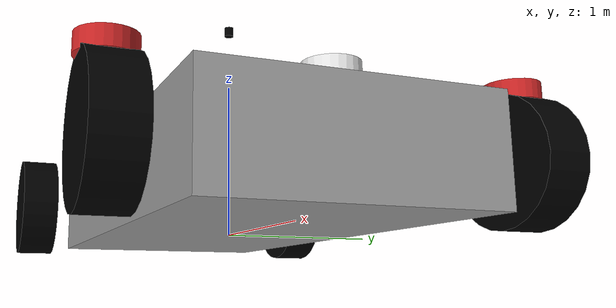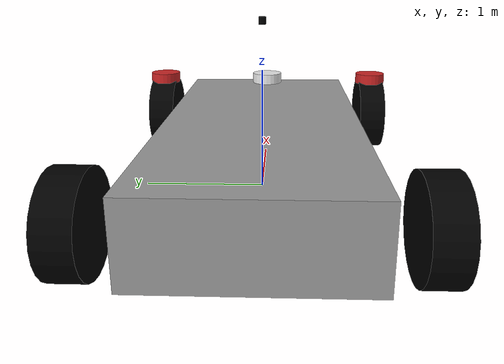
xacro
<?xml version="1.0"?>
<robot name="racebot" xmlns:xacro="http://wiki.ros.org/xacro">
  <!-- Include xacro for inertials, materials and wheels -->
  <xacro:include filename="$(find car_description)/urdf/steer_base/wheel.xacro" />

  <xacro:property name="M_PI" value="3.1415926535897931" />
  <xacro:arg name="lidar_visual" default="true" />

  <!-- Gazebo plugins -->
  <gazebo>
    <!-- Load ros_control plugin using the steer_bot_hardware_gazebo
    implementation of the hardware_interface::RobotHW -->
    <plugin name="gazebo_ros_control" filename="libgazebo_ros_control.so">
      <robotSimType>steer_bot_hardware_gazebo/SteerBotHardwareGazebo</robotSimType>
      <legacyModeNS>false</legacyModeNS>
    </plugin>
  </gazebo>

  <!-- Math constants -->
  <xacro:property name="deg_to_rad" value="0.01745329251994329577" />

  <!-- Robot base dimensions -->
  <xacro:property name="base_length" value="3.452" />
  <xacro:property name="base_width" value="1.6" />
  <xacro:property name="base_height" value="0.6" />
  <xacro:property name="base_mass" value="1620" />

  <!-- Wheel link dimensions -->
  <xacro:property name="wheel_radius" value="0.36" />
  <xacro:property name="wheel_thickness" value="0.25" />
  <xacro:property name="wheel_mass" value="40" />

  <!-- Steering link dimensions -->
  <xacro:property name="steer_radius" value="0.15" />
  <xacro:property name="steer_thickness" value="0.10" />
  <xacro:property name="steer_mass" value="20" />

  <!-- Axle positions -->
  <xacro:property name="axle_offset" value="0.3" />
  <xacro:property name="steer_offset" value="0.02" />

  <link name="base_footprint" />
  <joint name="base_joint" type="fixed">
    <parent link="base_footprint" />
    <child link="base_link" />
    <origin xyz="0 0 0.3" rpy="0 0 0" />
  </joint>

  <!-- Base link -->
  <link name="base_link">
    <visual>
      <origin xyz="0 0 0" rpy="0 0 0" />
      <geometry>
        <box size="${base_length} ${base_width} ${base_height}" />
      </geometry>
      <material name="gray" />
    </visual>
    <collision>
      <origin xyz="0 0 0" rpy="0 0 0" />
      <geometry>
        <box size="${base_length} ${base_width} ${base_height}" />
      </geometry>
    </collision>
    <xacro:solid_cuboid_inertial rpy="0 0 0" xyz="0 0 0" mass="${base_mass}" x="${base_length}"
      y="${base_width}" z="${base_height}" />
  </link>

  <!-- Front steer and rear wheel joints required for ackermann_steering_controller -->
  <xacro:front_steer name="front" parent="base" steer_radius="${steer_radius}"
    steer_thickness="${steer_thickness}"
    steer_mass="${steer_mass}" base_length="${base_length}" base_width="${base_width}"
    axle_offset="${axle_offset}"
    steer_height="${wheel_radius+steer_offset}"></xacro:front_steer>

  <!-- Rear Link -->
  <xacro:rear_wheel name="rear" parent="base" wheel_radius="${wheel_radius/4}"
    wheel_thickness="${wheel_thickness/2}" wheel_mass="${wheel_mass/32}">
    <origin xyz="${-base_length/2+axle_offset} 0 0" rpy="${-90 * deg_to_rad} 0 0" />
  </xacro:rear_wheel>

  <!-- Steerable front wheels -->
  <xacro:front_wheel_lr name="front_right" parent="base" reflect="-1" wheel_radius="${wheel_radius}"
    wheel_thickness="${wheel_thickness}"
    wheel_mass="${wheel_mass}" steer_radius="${steer_radius}" steer_thickness="${steer_thickness}"
    steer_mass="${steer_mass}"
    base_length="${base_length}" base_width="${base_width}" axle_offset="${axle_offset}"
    steer_height="${wheel_radius+steer_offset}"></xacro:front_wheel_lr>

  <xacro:front_wheel_lr name="front_left" parent="base" reflect="1" wheel_radius="${wheel_radius}"
    wheel_thickness="${wheel_thickness}"
    wheel_mass="${wheel_mass}" steer_radius="${steer_radius}" steer_thickness="${steer_thickness}"
    steer_mass="${steer_mass}"
    base_length="${base_length}" base_width="${base_width}" axle_offset="${axle_offset}"
    steer_height="${wheel_radius+steer_offset}"></xacro:front_wheel_lr>

  <!-- Rear wheels -->
  <xacro:rear_wheel_lr name="rear_right" parent="base" wheel_radius="${wheel_radius}"
    wheel_thickness="${wheel_thickness}" wheel_mass="${wheel_mass}">
    <origin xyz="${-base_length/2+axle_offset} ${-base_width/2-axle_offset} 0"
      rpy="${-90 * deg_to_rad} 0 0" />
  </xacro:rear_wheel_lr>

  <xacro:rear_wheel_lr name="rear_left" parent="base" wheel_radius="${wheel_radius}"
    wheel_thickness="${wheel_thickness}" wheel_mass="${wheel_mass}">
    <origin xyz="${-base_length/2+axle_offset} ${+base_width/2+axle_offset} 0"
      rpy="${-90 * deg_to_rad} 0 0" />
  </xacro:rear_wheel_lr>

  <!-- Colour -->
  <gazebo reference="base_link">
    <material>Gazebo/Residential</material>
  </gazebo>

  <link name="lidar">
    <visual>
      <geometry>
        <cylinder radius="0.03" length="0.06" />
      </geometry>
      <origin xyz="0 0 0" rpy="0 0 0" />
      <material name="black">
        <color rgba="0.0 0.0 0.0 1.0" />
      </material>
    </visual>
    <collision>
      <geometry>
        <cylinder radius="0.03" length="0.06" />
      </geometry>
      <origin xyz="0.0 0.0 0.0" rpy="0.0 0.0 0.0" />
    </collision>
    <inertial>
      <origin xyz="0 0 0" />
      <mass value="0.1" />
      <inertia ixx="6.64E-04" ixy="0" ixz="0" iyy="6.64E-04" iyz="0" izz="1.02E-03" />
    </inertial>
  </link>

  <joint name="lidar_joint" type="fixed">
    <parent link="base_link" />
    <child link="lidar" />
    <origin xyz="0.0 0 1.1" />
    <axis xyz="0 0 1" />
  </joint>

  <gazebo reference="lidar">
    <material>Gazebo/Grey</material>
    <sensor type="ray" name="hokuyo_sensor">
      <pose>0 0 0.0 0 0 0</pose>
      <visualize>false</visualize>
      <update_rate>40</update_rate>
      <ray>
        <scan>
          <horizontal>
            <samples>500</samples> <!-- Change this to 500 if gazebo keeps timing out -->
            <resolution>1</resolution>
            <min_angle>-${M_PI}</min_angle>
            <max_angle> ${M_PI}</max_angle>
          </horizontal>
        </scan>
        <range>
          <min>0.05</min>
          <max>10.0</max>
          <resolution>0.01</resolution>
        </range>
        <noise>
          <mean>0.0</mean>
          <stddev>0.01</stddev>
        </noise>
      </ray>
      <plugin name="gazebo_ros_hokuyo_controller" filename="libgazebo_ros_laser.so">
        <topicName>/scan</topicName>
        <frameName>lidar</frameName>
      </plugin>
    </sensor>
  </gazebo>

</robot>

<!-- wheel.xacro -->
<robot name="wheel" xmlns:xacro="http://wiki.ros.org/xacro">
  <!-- Include xacro for materials and inertials -->
  <xacro:include filename="$(find car_description)/urdf/steer_base/materials.xacro" />
  <xacro:include filename="$(find car_description)/urdf/steer_base/inertials.xacro" />

  <!-- Properties -->
  <xacro:property name="steer_effort" value="1000.0" />
  <xacro:property name="steer_velocity" value="1000.0" />
  <xacro:property name="steer_limit_deg" value="45.0" />
  <xacro:property name="deg_to_rad" value="0.01745329251994329577" />

  <!-- Bicycle model front steering link (required for steer_drive_controller) -->
  <xacro:macro name="front_steer"
    params="
      name
      parent
      steer_radius
      steer_thickness
      steer_mass
      base_length
      base_width
      axle_offset
      steer_height">
    <link name="${name}_steer_link">
      <visual>
        <origin xyz="0 0 0" rpy="0 0 0" />
        <geometry>
          <cylinder radius="${steer_radius}" length="${steer_thickness}" />
        </geometry>
        <material name="white" />
      </visual>
      <collision>
        <origin xyz="0 0 0" rpy="0 0 0" />
        <geometry>
          <cylinder radius="${steer_radius}" length="${steer_thickness}" />
        </geometry>
      </collision>
      <xacro:solid_cylinder_inertial
        rpy="0 0 0" xyz="0 0 0"
        mass="${steer_mass}"
        radius="${steer_radius}" length="${steer_thickness}" />
    </link>

    <joint name="${name}_steer_joint" type="revolute">
      <parent link="${parent}_link" />
      <child link="${name}_steer_link" />
      <origin xyz="${base_length/2-axle_offset} 0 ${steer_height}" rpy="0 0 0" />
      <axis xyz="0 0 1" />
      <limit effort="${steer_effort}"
        lower="${-180.0 * deg_to_rad}" upper="${180.0 * deg_to_rad}"
        velocity="${steer_velocity}" />
    </joint>

    <transmission name="${name}_steer_joint_trans">
      <type>transmission_interface/SimpleTransmission</type>
      <actuator name="${name}_steer_joint_motor">
        <mechanicalReduction>1</mechanicalReduction>
        <hardwareInterface>hardware_interface/PositionJointInterface</hardwareInterface>
      </actuator>
      <joint name="${name}_steer_joint">
        <hardwareInterface>hardware_interface/PositionJointInterface</hardwareInterface>
      </joint>
    </transmission>

    <gazebo reference="${name}_steer_link">
      <material>Gazebo/White</material>
    </gazebo>
  </xacro:macro>

  <!-- Car steering model front (steerable) wheel links (left/right) -->
  <xacro:macro name="front_wheel_lr"
    params="
      name
      parent
      reflect
      wheel_radius
      wheel_thickness
      wheel_mass
      steer_radius
      steer_thickness
      steer_mass
      base_length
      base_width
      axle_offset
      steer_height">
    <link name="${name}_steer_link">
      <visual>
        <origin xyz="0 0 0" rpy="0 0 0" />
        <geometry>
          <cylinder radius="${steer_radius}" length="${steer_thickness}" />
        </geometry>
        <material name="red" />
      </visual>
      <collision>
        <origin xyz="0 0 0" rpy="0 0 0" />
        <geometry>
          <cylinder radius="${steer_radius}" length="${steer_thickness}" />
        </geometry>
      </collision>
      <xacro:solid_cylinder_inertial
        rpy="0 0 0" xyz="0 0 0"
        mass="${steer_mass}"
        radius="${steer_radius}" length="${steer_thickness}" />
    </link>

    <joint name="${name}_steer_joint" type="revolute">
      <parent link="${parent}_link" />
      <child link="${name}_steer_link" />
      <origin
        xyz="${base_length/2-axle_offset} ${reflect*(base_width/2+axle_offset)} ${steer_height}"
        rpy="0 0 0" />
      <axis xyz="0 0 1" />
      <limit effort="${steer_effort}"
        lower="${steer_limit_deg * deg_to_rad * -1.0}" upper="${steer_limit_deg * deg_to_rad}"
        velocity="${steer_velocity}" />
    </joint>

    <link name="${name}_wheel_link">
      <visual>
        <origin xyz="0 0 0" rpy="0 0 0" />
        <geometry>
          <cylinder radius="${wheel_radius}" length="${wheel_thickness}" />
        </geometry>
        <material name="black" />
      </visual>
      <collision>
        <origin xyz="0 0 0" rpy="0 0 0" />
        <geometry>
          <cylinder radius="${wheel_radius}" length="${wheel_thickness}" />
        </geometry>
      </collision>
      <xacro:solid_cylinder_inertial
        rpy="0 0 0" xyz="0 0 0"
        mass="${wheel_mass}"
        radius="${wheel_radius}" length="${wheel_thickness}" />
    </link>

    <joint name="${name}_wheel_joint" type="continuous">
      <parent link="${name}_steer_link" />
      <child link="${name}_wheel_link" />
      <origin xyz="0 0 ${-steer_height}" rpy="${-90 * deg_to_rad} 0 0" />
      <axis xyz="0 0 1" />
    </joint>

    <transmission name="${name}_steer_joint_trans">
      <type>transmission_interface/SimpleTransmission</type>
      <actuator name="${name}_steer_joint_motor">
        <mechanicalReduction>1</mechanicalReduction>
        <hardwareInterface>hardware_interface/PositionJointInterface</hardwareInterface>
      </actuator>
      <joint name="${name}_steer_joint">
        <hardwareInterface>hardware_interface/PositionJointInterface</hardwareInterface>
      </joint>
    </transmission>

    <transmission name="${name}_wheel_joint_trans">
      <type>transmission_interface/SimpleTransmission</type>
      <actuator name="${name}_wheel_joint_motor">
        <mechanicalReduction>1</mechanicalReduction>
        <hardwareInterface>hardware_interface/VelocityJointInterface</hardwareInterface>
      </actuator>
      <joint name="${name}_wheel_joint">
        <hardwareInterface>hardware_interface/VelocityJointInterface</hardwareInterface>
      </joint>
    </transmission>

    <gazebo reference="${name}_steer_link">
      <material>Gazebo/Red</material>
    </gazebo>

    <gazebo reference="${name}_wheel_link">
      <material>Gazebo/Black</material>
    </gazebo>
  </xacro:macro>

  <!-- Bicycle model rear wheel link (required for steer_drive_controller) -->
  <xacro:macro name="rear_wheel"
    params="
      name
      parent
      wheel_radius
      wheel_thickness
      wheel_mass
      *origin">
    <link name="${name}_wheel_link">
      <visual>
        <origin xyz="0 0 0" rpy="0 0 0" />
        <geometry>
          <cylinder radius="${wheel_radius}" length="${wheel_thickness}" />
        </geometry>
        <material name="white" />
      </visual>
      <collision>
        <origin xyz="0 0 0" rpy="0 0 0" />
        <geometry>
          <cylinder radius="${wheel_radius}" length="${wheel_thickness}" />
        </geometry>
      </collision>
      <xacro:solid_cylinder_inertial
        rpy="0 0 0" xyz="0 0 0"
        mass="${wheel_mass}"
        radius="${wheel_radius}" length="${wheel_thickness}" />
    </link>

    <joint name="${name}_wheel_joint" type="continuous">
      <parent link="${parent}_link" />
      <child link="${name}_wheel_link" />
      <xacro:insert_block name="origin" />
      <axis xyz="0 0 1" />
    </joint>

    <transmission name="${name}_wheel_joint_trans">
      <type>transmission_interface/SimpleTransmission</type>
      <actuator name="${name}_wheel_joint_motor">
        <mechanicalReduction>1</mechanicalReduction>
        <hardwareInterface>hardware_interface/VelocityJointInterface</hardwareInterface>
      </actuator>
      <joint name="${name}_wheel_joint">
        <hardwareInterface>hardware_interface/VelocityJointInterface</hardwareInterface>
      </joint>
    </transmission>

    <gazebo reference="${name}_wheel_link">
      <material>Gazebo/White</material>
    </gazebo>
  </xacro:macro>

  <!-- Bicycle model front wheel link (passive - no transmission) -->
  <xacro:macro name="front_wheel"
    params="
      name
      parent
      wheel_radius
      wheel_thickness
      wheel_mass
      *origin">
    <link name="${name}_wheel_link">
      <visual>
        <origin xyz="0 0 0" rpy="0 0 0" />
        <geometry>
          <cylinder radius="${wheel_radius}" length="${wheel_thickness}" />
        </geometry>
        <material name="white" />
      </visual>
      <collision>
        <origin xyz="0 0 0" rpy="0 0 0" />
        <geometry>
          <cylinder radius="${wheel_radius}" length="${wheel_thickness}" />
        </geometry>
      </collision>
      <xacro:solid_cylinder_inertial
        rpy="0 0 0" xyz="0 0 0"
        mass="${wheel_mass}"
        radius="${wheel_radius}" length="${wheel_thickness}" />
    </link>

    <joint name="${name}_wheel_joint" type="continuous">
      <parent link="${parent}_link" />
      <child link="${name}_wheel_link" />
      <xacro:insert_block name="origin" />
      <axis xyz="0 0 1" />
    </joint>

    <gazebo reference="${name}_wheel_link">
      <material>Gazebo/White</material>
    </gazebo>

    <gazebo reference="${name}_wheel_joint">
      <provideFeedback>true</provideFeedback>
    </gazebo>
  </xacro:macro>

  <!-- Car steering model rear wheel links (left/right) -->
  <xacro:macro name="rear_wheel_lr"
    params="
      name
      parent
      wheel_radius
      wheel_thickness
      wheel_mass
      *origin">
    <link name="${name}_wheel_link">
      <visual>
        <origin xyz="0 0 0" rpy="0 0 0" />
        <geometry>
          <cylinder radius="${wheel_radius}" length="${wheel_thickness}" />
        </geometry>
        <material name="black" />
      </visual>
      <collision>
        <origin xyz="0 0 0" rpy="0 0 0" />
        <geometry>
          <cylinder radius="${wheel_radius}" length="${wheel_thickness}" />
        </geometry>
      </collision>
      <xacro:solid_cylinder_inertial
        rpy="0 0 0" xyz="0 0 0"
        mass="${wheel_mass}"
        radius="${wheel_radius}" length="${wheel_thickness}" />
    </link>

    <joint name="${name}_wheel_joint" type="continuous">
      <parent link="${parent}_link" />
      <child link="${name}_wheel_link" />
      <xacro:insert_block name="origin" />
      <axis xyz="0 0 1" />
    </joint>

    <transmission name="${name}_wheel_joint_trans">
      <type>transmission_interface/SimpleTransmission</type>
      <actuator name="${name}_wheel_joint_motor">
        <mechanicalReduction>1</mechanicalReduction>
        <hardwareInterface>hardware_interface/VelocityJointInterface</hardwareInterface>
      </actuator>
      <joint name="${name}_wheel_joint">
        <hardwareInterface>hardware_interface/VelocityJointInterface</hardwareInterface>
      </joint>
    </transmission>

    <gazebo reference="${name}_wheel_link">
      <material>Gazebo/Black</material>
    </gazebo>
  </xacro:macro>
</robot>
